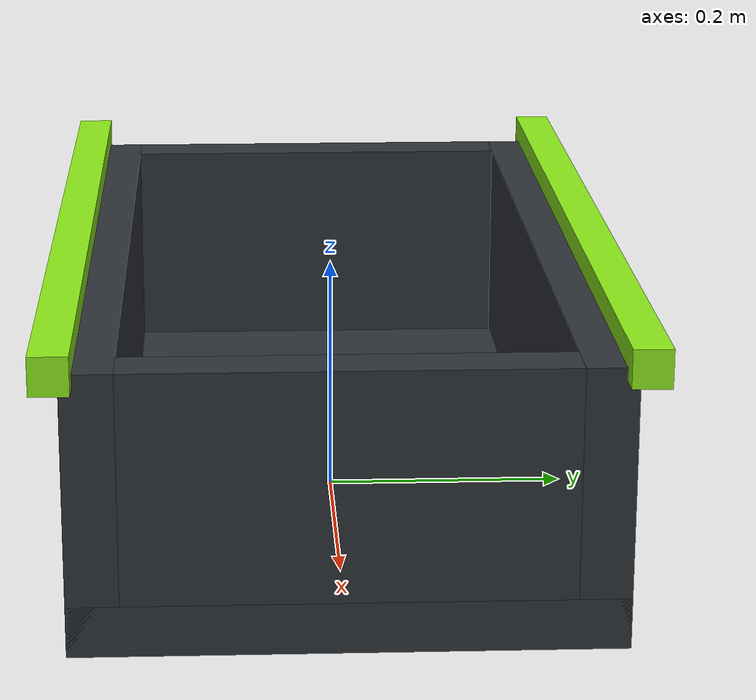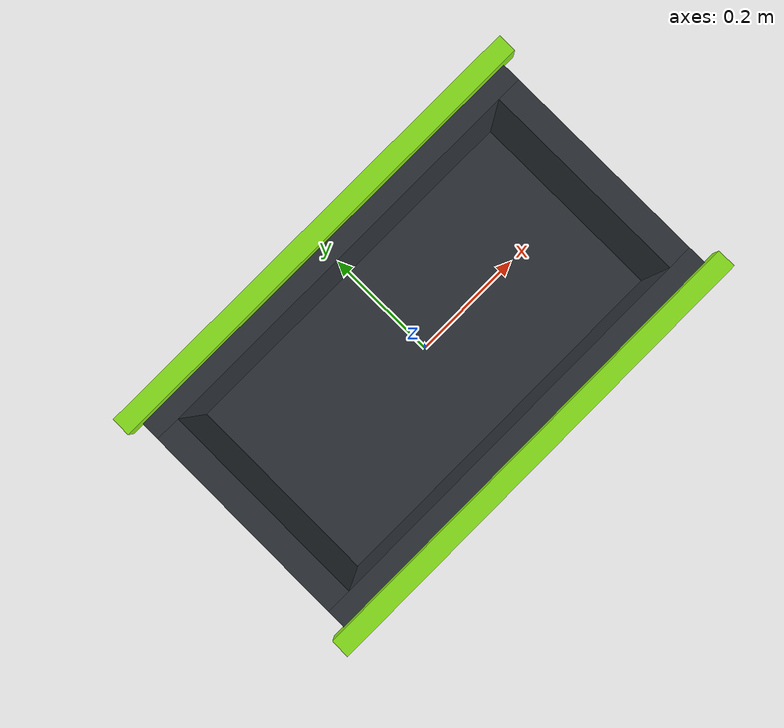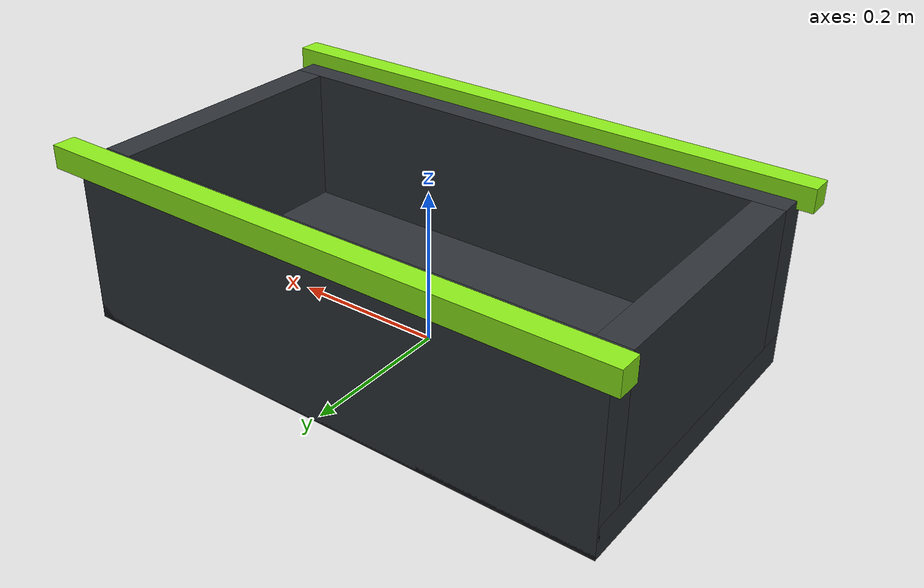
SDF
<?xml version="1.0"?>
<sdf version="1.10">
  <model name="l_workcell_filled_basket">
    <static>true</static>
    <link name="basket_and_goods">
      <collision name="bottom_collision">
        <pose>0 0 0.02 0 0 0</pose>
        <geometry><box><size>0.72 0.42 0.04</size></box></geometry>
      </collision>
      <visual name="bottom_visual">
        <pose>0 0 0.02 0 0 0</pose>
        <geometry><box><size>0.72 0.42 0.04</size></box></geometry>
        <material><ambient>0.08 0.09 0.10 1</ambient><diffuse>0.18 0.20 0.22 1</diffuse></material>
      </visual>

      <collision name="front_wall_collision">
        <pose>0 -0.19 0.11 0 0 0</pose>
        <geometry><box><size>0.72 0.04 0.22</size></box></geometry>
      </collision>
      <visual name="front_wall_visual">
        <pose>0 -0.19 0.11 0 0 0</pose>
        <geometry><box><size>0.72 0.04 0.22</size></box></geometry>
        <material><ambient>0.08 0.09 0.10 1</ambient><diffuse>0.18 0.20 0.22 1</diffuse></material>
      </visual>
      <collision name="rear_wall_collision">
        <pose>0 0.19 0.11 0 0 0</pose>
        <geometry><box><size>0.72 0.04 0.22</size></box></geometry>
      </collision>
      <visual name="rear_wall_visual">
        <pose>0 0.19 0.11 0 0 0</pose>
        <geometry><box><size>0.72 0.04 0.22</size></box></geometry>
        <material><ambient>0.08 0.09 0.10 1</ambient><diffuse>0.18 0.20 0.22 1</diffuse></material>
      </visual>
      <collision name="left_wall_collision">
        <pose>-0.34 0 0.11 0 0 0</pose>
        <geometry><box><size>0.04 0.34 0.22</size></box></geometry>
      </collision>
      <visual name="left_wall_visual">
        <pose>-0.34 0 0.11 0 0 0</pose>
        <geometry><box><size>0.04 0.34 0.22</size></box></geometry>
        <material><ambient>0.08 0.09 0.10 1</ambient><diffuse>0.18 0.20 0.22 1</diffuse></material>
      </visual>
      <collision name="right_wall_collision">
        <pose>0.34 0 0.11 0 0 0</pose>
        <geometry><box><size>0.04 0.34 0.22</size></box></geometry>
      </collision>
      <visual name="right_wall_visual">
        <pose>0.34 0 0.11 0 0 0</pose>
        <geometry><box><size>0.04 0.34 0.22</size></box></geometry>
        <material><ambient>0.08 0.09 0.10 1</ambient><diffuse>0.18 0.20 0.22 1</diffuse></material>
      </visual>

      <visual name="rim_front_visual">
        <pose>0 -0.215 0.225 0 0 0</pose>
        <geometry><box><size>0.76 0.03 0.03</size></box></geometry>
        <material><ambient>0.30 0.65 0.05 1</ambient><diffuse>0.55 0.92 0.10 1</diffuse></material>
      </visual>
      <visual name="rim_rear_visual">
        <pose>0 0.215 0.225 0 0 0</pose>
        <geometry><box><size>0.76 0.03 0.03</size></box></geometry>
        <material><ambient>0.30 0.65 0.05 1</ambient><diffuse>0.55 0.92 0.10 1</diffuse></material>
      </visual>

    </link>
  </model>
</sdf>
